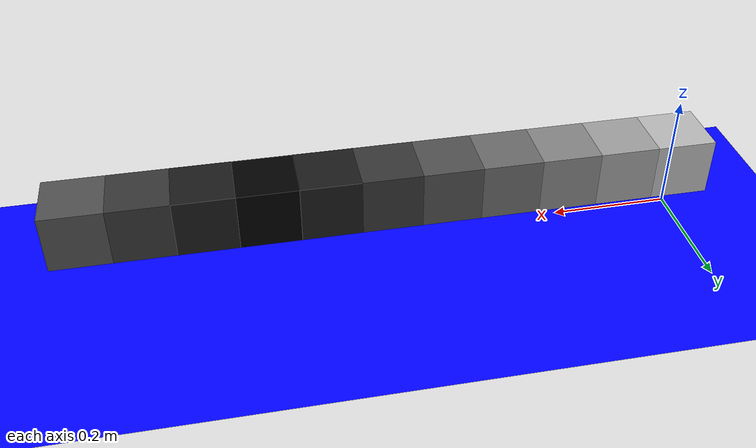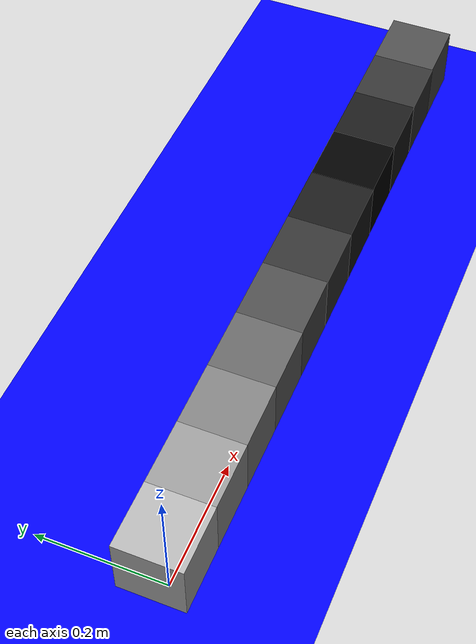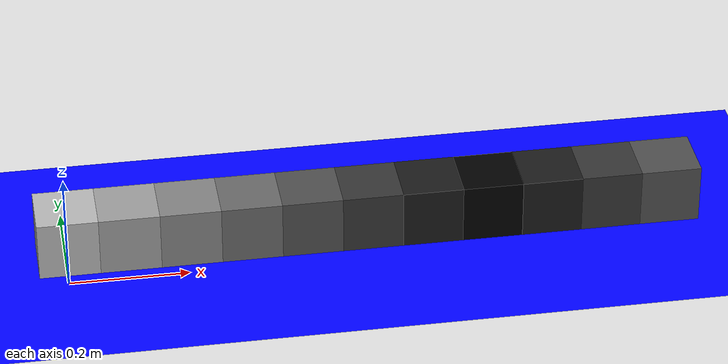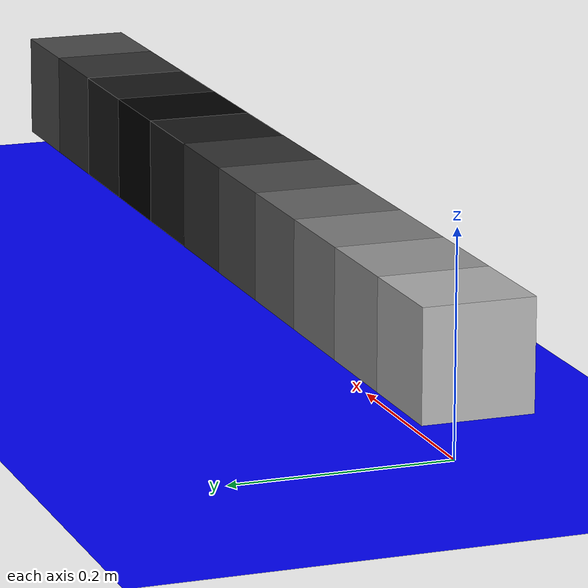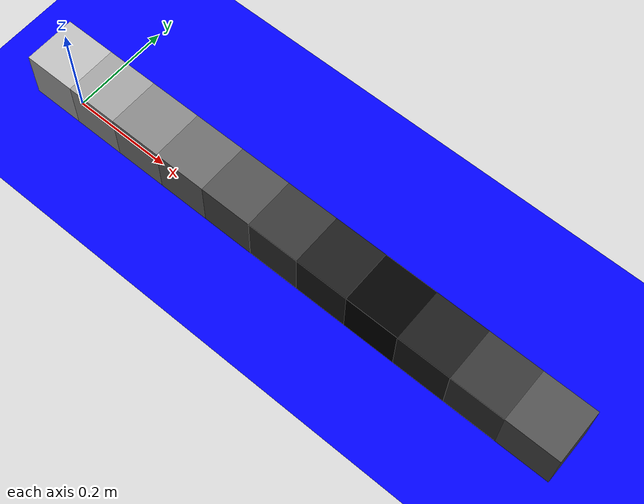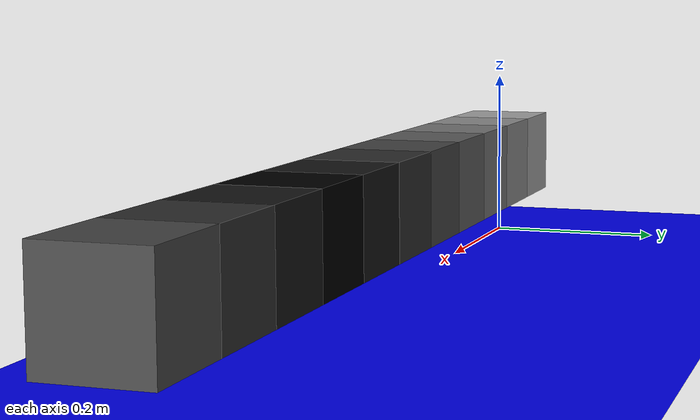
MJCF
<mujoco>
    <visual>
        <headlight ambient="1 1 1" diffuse="1 1 1" specular="0.1 0.1 0.1"/>
        <map fogstart="3" fogend="5" force="0.1" zfar="10"/>
        <rgba haze="0.3 0.4 0.5 1" fog="0.3 0.4 0.5 1"/>
        <quality shadowsize="2048"/>
    </visual>

    <worldbody>
        <light diffuse="1 1 1" pos="0 0 3" dir="0 -1 0"/>
        <geom type="plane" size="5 5 0.1" rgba="0 0 1 .5"/>

        <body name="head" pos="0 0 0.1">
            <joint type="free"/>
            <geom type="box" size="0.05 0.05 0.05" rgba=".7 .7 .7 1"/>

            <body pos="0.1 0 0">
                <joint pos="-0.05 0 0" name="spine1" type="hinge" limited="true" range="-7 7" axis="0 1 0"/>
                <geom type="box" size="0.05 0.05 0.05" rgba=".6 .6 .6 1"/>

                <body pos="0.1 0 0">
                    <joint pos="-0.05 0 0" name="spine2" type="hinge" limited="true" range="-7 7" axis="0 1 0"/>
                    <geom type="box" size="0.05 0.05 0.05" rgba=".5 .5 .5 1"/>

                    <body pos="0.1 0 0">
                        <joint pos="-0.05 0 0" name="spine3" type="hinge" limited="true" range="-7 7" axis="0 1 0"/>
                        <geom type="box" size="0.05 0.05 0.05" rgba=".4 .4 .4 1"/>

                        <body pos="0.1 0 0">
                            <joint pos="-0.05 0 0" name="spine4" type="hinge" limited="true" range="-7 7" axis="0 1 0"/>
                            <geom type="box" size="0.05 0.05 0.05" rgba=".3 .3 .3 1"/>

                            <body pos="0.1 0 0">
                                <joint pos="-0.05 0 0" name="spine5" type="hinge" limited="true" range="-7 7" axis="0 1 0"/>
                                <geom type="box" size="0.05 0.05 0.05" rgba=".2 .2 .2 1"/>

                                <body pos="0.1 0 0">
                                    <joint pos="-0.05 0 0" name="spine6" type="hinge" limited="true" range="-7 7" axis="0 1 0"/>
                                    <geom type="box" size="0.05 0.05 0.05" rgba=".1 .1 .1 1"/>

                                    <body pos="0.1 0 0">
                                        <joint pos="-0.05 0 0" name="spine7" type="hinge" limited="true" range="-7 7" axis="0 1 0"/>
                                        <geom type="box" size="0.05 0.05 0.05" rgba=".0 .0 .0 1"/>

                                        <body pos="0.1 0 0">
                                            <joint pos="-0.05 0 0" name="spine8" type="hinge" limited="true" range="-7 7" axis="0 1 0"/>
                                            <geom type="box" size="0.05 0.05 0.05" rgba=".1 .1 .1 1"/>

                                            <body pos="0.1 0 0">
                                                <joint pos="-0.05 0 0" name="spine9" type="hinge" limited="true" range="-7 7" axis="0 1 0"/>
                                                <geom type="box" size="0.05 0.05 0.05" rgba=".2 .2 .2 1"/>

                                                <body pos="0.1 0 0">
                                                    <joint pos="-0.05 0 0" name="spine10" type="hinge" limited="true" range="-7 7" axis="0 1 0"/>
                                                    <geom type="box" size="0.05 0.05 0.05" rgba=".3 .3 .3 1"/>
                                                </body>
                                            </body>
                                        </body>
                                    </body>
                                </body>
                            </body>
                        </body>
                    </body>
                </body>
            </body>
        </body>
    </worldbody>

    <actuator>
        <motor joint="spine1" name="motor1" />
        <motor joint="spine2" name="motor2" />
        <motor joint="spine3" name="motor3" />
        <motor joint="spine4" name="motor4" />
        <motor joint="spine5" name="motor5" />
        <motor joint="spine6" name="motor6" />
        <motor joint="spine7" name="motor7" />
        <motor joint="spine8" name="motor8" />
        <motor joint="spine9" name="motor9" />
        <motor joint="spine10" name="motor10" />
    </actuator>
</mujoco>
